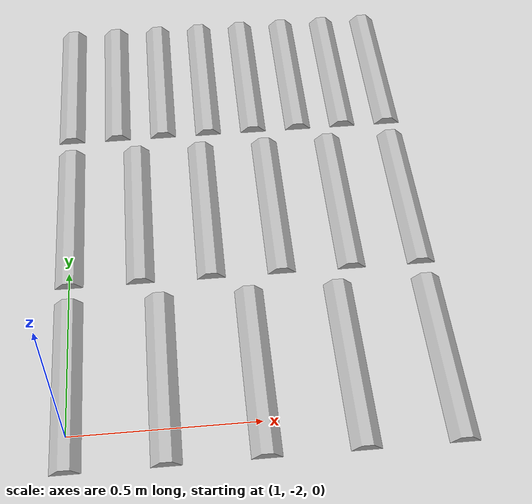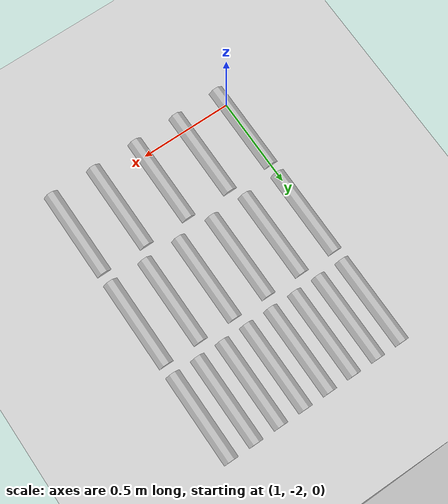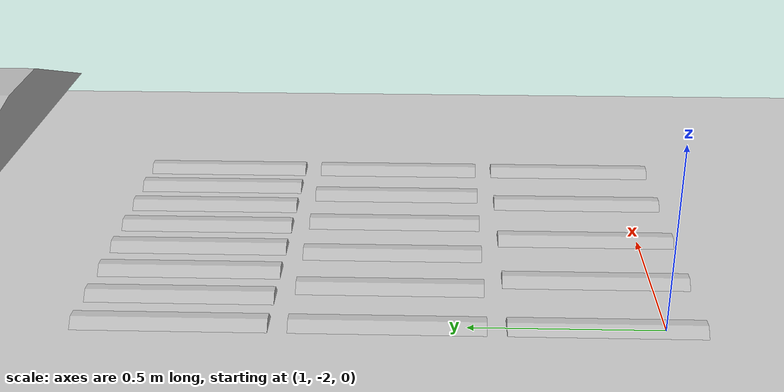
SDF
<?xml version="1.0" ?>
<sdf version="1.5">
    <world name="default">
        <!-- Target real time factor is the product of max_step_size and real_time_update_rate -->
        <!-- Negative real_time_update_rate means that Gazebo will run as fast as possible -->
        <physics type="ode">
            <type>world</type>
            <max_step_size>0.001</max_step_size>
            <real_time_update_rate>1000</real_time_update_rate>
            <iters>500</iters>
        </physics>
        <!-- A global light source -->
        <include>
            <uri>model://sun</uri>
        </include>
        <!-- A ground plane -->
        <include>
            <uri>model://ground_plane</uri>
        </include>

        <!-- Add STL Models -->
        <model name="slopes">
            <static>true</static>
            <link name="slope">
                <visual name="visual_slopes">
                    <geometry>
                        <mesh>
                            <uri>file:///home/lsy/rl_ws/src/rl_common/robot_gazebo/model/slopes.stl</uri>
                            <scale>0.001 0.001 0.001</scale>
                        </mesh>
                    </geometry>
                    <pose>1 2 0 0 0 -1.57</pose>
                </visual>
                <collision name="collision_slopes">
                    <geometry>
                        <mesh>
                            <uri>file:///home/lsy/rl_ws/src/rl_common/robot_gazebo/model/slopes.stl</uri>
                            <scale>0.001 0.001 0.001</scale>
                        </mesh>
                    </geometry>
                    <pose>1 2 0 0 0 -1.57</pose>
                </collision>
            </link>
        </model>

        <model name="model_speed_bumps">
            <static>true</static>
            <link name="speed_bumps">
                <visual name="visual_speed_bumps">
                    <geometry>
                        <mesh>
                            <uri>file:///home/lsy/rl_ws/src/rl_common/robot_gazebo/model/speed_bumps.stl</uri>
                            <scale>0.001 0.001 0.001</scale>
                        </mesh>
                    </geometry>
                    <pose>1 -1 0 0 0 0</pose>
                </visual>
                <collision name="collision_speed_bumps">
                    <geometry>
                        <mesh>
                            <uri>file:///home/lsy/rl_ws/src/rl_common/robot_gazebo/model/speed_bumps.stl</uri>
                            <scale>0.001 0.001 0.001</scale>
                        </mesh>
                    </geometry>
                    <pose>1 -1 0 0 0 0</pose>
                </collision>
            </link>
        </model>
    </world>
</sdf>
